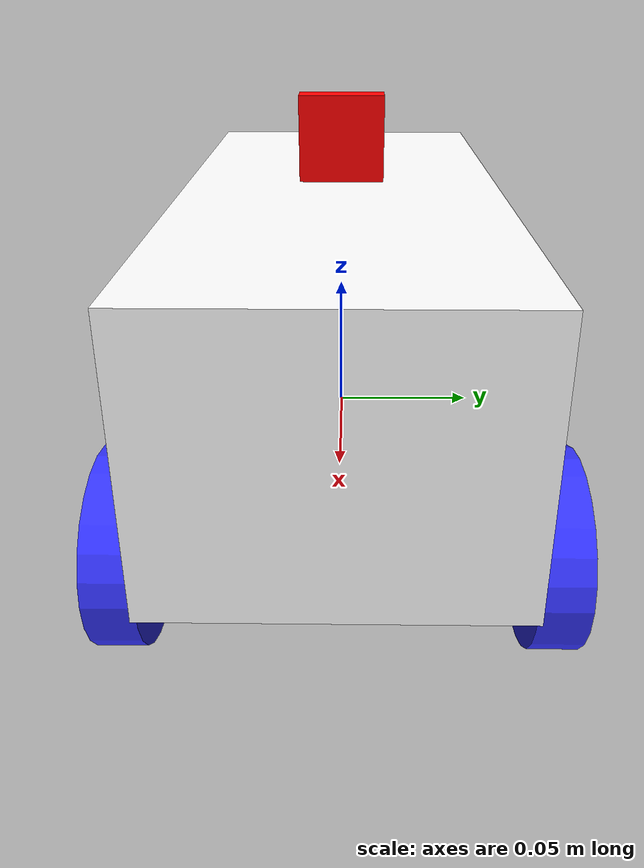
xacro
<?xml version = "1.0"?>
<robot xmlns:xacro = "http://www.ros.org/wiki/xacro"  name = "robot">

    <xacro:include filename = "robot_core.xacro" />
	<xacro:include filename = "ros2_control.xacro" />

	<xacro:include filename = "camera.xacro" />

</robot>

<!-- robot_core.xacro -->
<robot xmlns:xacro = "http://www.ros.org/wiki/xacro">
	<xacro:include filename = "inertial_macros.xacro" />

	<material name = "white"> <color rgba = "1 1 1 1"/> </material>
	<material name = "orange"> <color rgba = "1 0.3 0.1 1"/> </material>
	<material name = "blue"> <color rgba = "0.2 0.2 1 1"/> </material>
	<material name = "black"> <color rgba = "0 0 0 1"/> </material>
	<material name = "red"> <color rgba = "1 0 0 1"/> </material>

	<!-- BASE LINK DECLARATION -->
	<link name = "base_link" />

	<!-- CHASSIS MODELING -->
	<joint name = "chassis_joint" type="fixed">
		<parent link = "base_link"/>
		<child link = "chassis"/>
		<origin xyz = "-0.1 0 0"/>
	</joint>

	<link name = "chassis">
		<visual>
			<origin xyz = "0.115 0 0.045" rpy = "0 0 0"/>
			<geometry>
				<box size = "0.23 0.11 0.09"/>
			</geometry>
			<material name = "white"/>
		</visual>

		<collision>
			<origin xyz = "0.115 0 0.045" rpy="0 0 0"/>
			<geometry>
				<box size = "0.23 0.11 0.09"/>
			</geometry>
			<material name = "white"/>
		</collision>

		<xacro:inertial_box mass = "0.75" x = "0.23" y = "0.11" z = "0.09">
			<origin xyz = "0.115 0 0.045" rpy = "0 0 0"/>
		</xacro:inertial_box>
	</link>

	<gazebo reference="chassis">
		<material>Gazebo/White</material>
	</gazebo>

	<!-- LEFT WHEELS -->
	<joint name = "left_wheel_front_joint" type = "continuous">
		<parent link = "base_link"/>
		<child link = "left_wheel_front"/>
		<origin xyz = "0.095 0.0625 0" rpy = "-${pi/2} 0 0"/>
		<axis xyz = "0 0 1"/>
	</joint>

	<link name = "left_wheel_front">
		<visual>
			<geometry>
				<cylinder length = "0.015" radius = "0.03" />
			</geometry>
			<material name = "blue"/>
		</visual>

		<collision>
			<geometry>
				<cylinder length = "0.015" radius = "0.03" />
			</geometry>
		</collision>

		<xacro:inertial_cylinder mass = "0.1" length = "0.015" radius = "0.03">
			<origin xyz = "0 0 0" rpy = "0 0 0"/>
		</xacro:inertial_cylinder>
	</link>

	<gazebo reference="left_wheel_front">
		<material>Gazebo/Blue</material>
	</gazebo>

	<joint name="left_wheel_back_joint" type="continuous">
		<parent link="base_link"/>
		<child link="left_wheel_back"/>
		<origin xyz="-0.065 0.0625 0" rpy="-${pi/2} 0 0"/>
		<axis xyz="0 0 1"/>
	</joint>

	<link name="left_wheel_back">
		<visual>
			<geometry>
				<cylinder length = "0.015" radius = "0.03" />
			</geometry>
			<material name="blue"/>
		</visual>

		<collision>
			<geometry>
				<cylinder length = "0.015" radius = "0.03" />
			</geometry>
		</collision>

		<xacro:inertial_cylinder mass = "0.1" length = "0.015" radius = "0.03">
			<origin xyz = "0 0 0" rpy = "0 0 0"/>
		</xacro:inertial_cylinder>
	</link>

	<gazebo reference="left_wheel_back">
		<material>Gazebo/Blue</material>
	</gazebo>

	<!-- RIGHT WHEELS -->
	<joint name = "right_wheel_front_joint" type = "continuous">
		<parent link = "base_link"/>
		<child link = "right_wheel_front"/>
		<origin xyz = "0.095 -0.0625 0" rpy = "${pi/2} 0 0"/>
		<axis xyz = "0 0 -1"/>
	</joint>

	<link name="right_wheel_front">
		<visual>
			<geometry>
				<cylinder length = "0.015" radius="0.03" />
			</geometry>
			<material name="blue"/>
		</visual>

		<collision>
			<geometry>
				<cylinder length = "0.015" radius="0.03" />
			</geometry>
		</collision>

		<xacro:inertial_cylinder mass = "0.1" length = "0.015" radius = "0.03">
			<origin xyz = "0 0 0" rpy = "0 0 0"/>
		</xacro:inertial_cylinder>
	</link>

	<gazebo reference="right_wheel_front">
		<material>Gazebo/Blue</material>
	</gazebo>

	<joint name="right_wheel_back_joint" type="continuous">
		<parent link="base_link"/>
		<child link="right_wheel_back"/>
		<origin xyz="-0.065 -0.0625 0" rpy="${pi/2} 0 0"/>
		<axis xyz="0 0 -1"/>
	</joint>

	<link name="right_wheel_back">
		<visual>
			<geometry>
				<cylinder length = "0.015" radius = "0.03" />
			</geometry>
			<material name="blue"/>
		</visual>

		<collision>
			<geometry>
				<cylinder length = "0.015" radius = "0.03" />
			</geometry>
		</collision>

		<xacro:inertial_cylinder mass = "0.1" length = "0.015" radius = "0.03">
			<origin xyz = "0 0 0" rpy = "0 0 0"/>
		</xacro:inertial_cylinder>
	</link>

	<gazebo reference="right_wheel_back">
		<material>Gazebo/Blue</material>
	</gazebo>

</robot>

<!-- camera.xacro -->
<robot xmlns:xacro="http://www.ros.org/wiki/xacro" >

	<joint name="camera_joint" type="fixed">
		<parent link="chassis"/>
		<child link="camera_link"/>
		<origin xyz="0.1 0 0.105" rpy="0 0 0"/>
	</joint>

	<link name="camera_link">
		<visual>
			<geometry>
				<box size="0.010 0.03 0.03"/>
			</geometry>
			<material name="red"/>
		</visual>

	</link>

	<joint name="camera_optical_joint" type="fixed">
		<parent link="camera_link"/>
		<child link="camera_link_optical"/>
		<origin xyz="0 0 0" rpy="${-pi/2} 0 ${-pi/2}"/>
	</joint>

	<link name="camera_link_optical"></link>

	<gazebo reference="camera_link">
		<material>Gazebo/Red</material>

		<sensor name="camera" type="camera">
			<pose> 0 0 0 0 0 0 </pose>
			<visualize>true</visualize>
			<update_rate>10</update_rate>
			<camera>
				<horizontal_fov>1.0472</horizontal_fov>
				<image>
					<format>R8G8B8</format>
					<width>640</width>
					<height>280</height>
				</image>
				<clip>
					<near>0.05</near>
					<far>8.0</far>
				</clip>
			</camera>
			<plugin name="camera_controller" filename="libgazebo_ros_camera.so">
				<frame_name>camera_link_optical</frame_name>
			</plugin>
		</sensor>
	</gazebo>

</robot>
